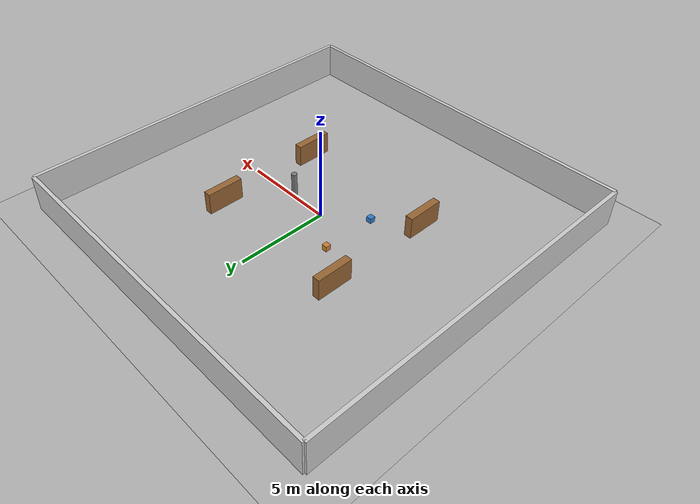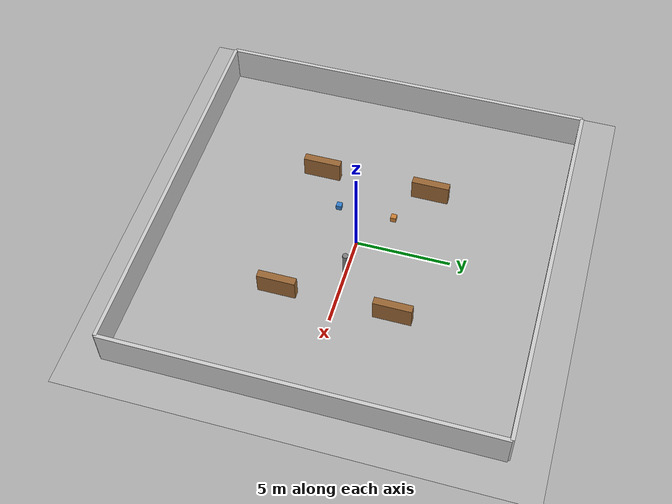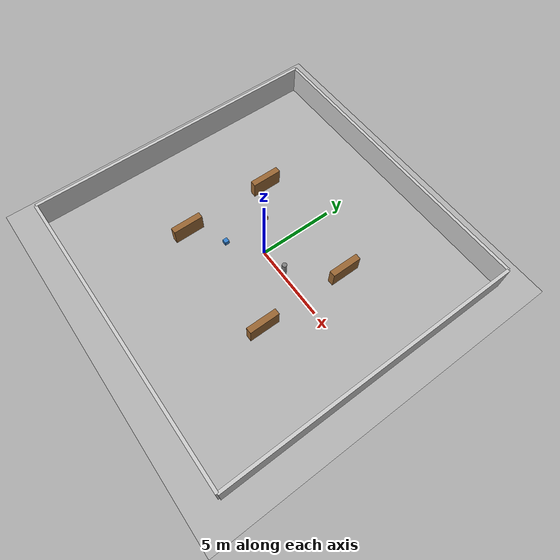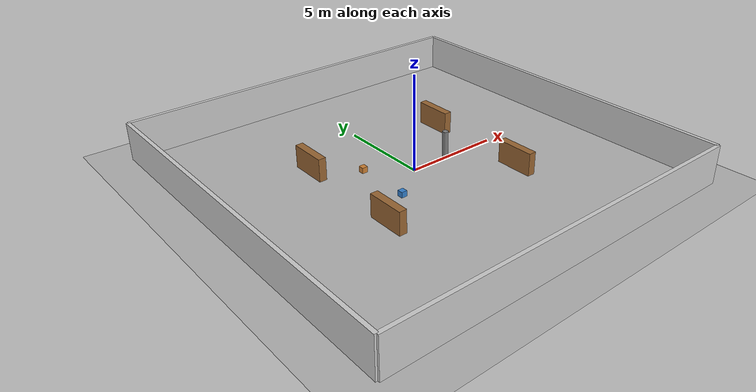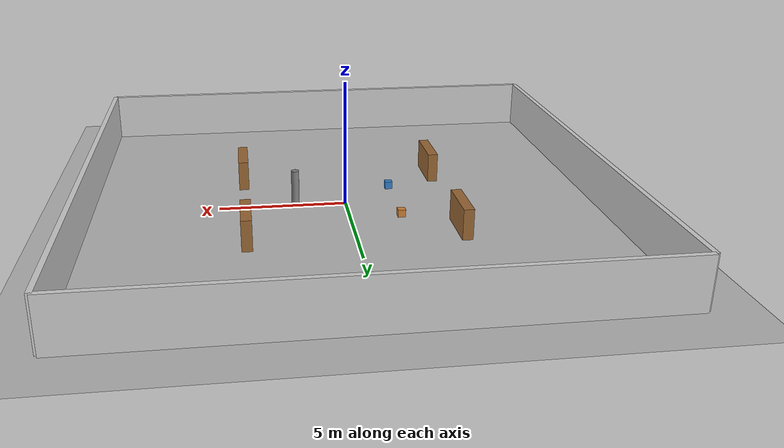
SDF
<?xml version="1.0"?>
<!--
  warehouse.world  — Gazebo Harmonic SDF v1.9
  A simple indoor warehouse environment with aisles formed by box obstacles.
  Physics: ODE, 1 ms step, real-time factor 1.0
-->
<sdf version="1.9">
  <world name="warehouse">

    <!-- ── Physics (ODE) ──────────────────────────────────────── -->
    <physics name="1ms" type="ode">
      <max_step_size>0.001</max_step_size>
      <real_time_factor>1.0</real_time_factor>
      <real_time_update_rate>1000</real_time_update_rate>
      <ode>
        <solver>
          <type>quick</type>
          <iters>150</iters>
          <precon_iters>0</precon_iters>
          <sor>1.4</sor>
          <use_dynamic_moi_rescaling>1</use_dynamic_moi_rescaling>
        </solver>
        <constraints>
          <cfm>0.00001</cfm>
          <erp>0.2</erp>
          <contact_max_correcting_vel>2000</contact_max_correcting_vel>
          <contact_surface_layer>0.01</contact_surface_layer>
        </constraints>
      </ode>
    </physics>

    <!-- ── Required Gazebo Harmonic system plugins ────────────── -->
    <plugin filename="gz-sim-physics-system"
            name="gz::sim::systems::Physics"/>

    <plugin filename="gz-sim-user-commands-system"
            name="gz::sim::systems::UserCommands"/>

    <plugin filename="gz-sim-scene-broadcaster-system"
            name="gz::sim::systems::SceneBroadcaster"/>

    <!-- Sensors system — required for LiDAR / GPU sensors to function -->
    <plugin filename="gz-sim-sensors-system"
            name="gz::sim::systems::Sensors">
      <render_engine>ogre2</render_engine>
    </plugin>

    <!-- Contact sensor support -->
    <plugin filename="gz-sim-contact-system"
            name="gz::sim::systems::Contact"/>

    <!-- ── Lighting ───────────────────────────────────────────── -->
    <light type="directional" name="sun">
      <cast_shadows>true</cast_shadows>
      <pose>0 0 10 0 0 0</pose>
      <diffuse>0.9 0.9 0.9 1</diffuse>
      <specular>0.3 0.3 0.3 1</specular>
      <direction>-0.5 0.2 -0.9</direction>
      <attenuation>
        <range>1000</range>
        <constant>0.9</constant>
        <linear>0.01</linear>
        <quadratic>0.001</quadratic>
      </attenuation>
    </light>

    <!-- Ambient fill light -->
    <light type="directional" name="ambient_fill">
      <cast_shadows>false</cast_shadows>
      <pose>0 0 8 0 0 0</pose>
      <diffuse>0.4 0.4 0.4 1</diffuse>
      <specular>0.0 0.0 0.0 1</specular>
      <direction>0.5 -0.2 -0.9</direction>
    </light>

    <!-- ── Ground plane ───────────────────────────────────────── -->
    <model name="ground_plane">
      <static>true</static>
      <link name="link">
        <collision name="collision">
          <geometry>
            <plane>
              <normal>0 0 1</normal>
              <size>50 50</size>
            </plane>
          </geometry>
          <surface>
            <friction>
              <ode>
                <mu>0.6</mu>
                <mu2>0.6</mu2>
              </ode>
            </friction>
          </surface>
        </collision>
        <visual name="visual">
          <geometry>
            <plane>
              <normal>0 0 1</normal>
              <size>50 50</size>
            </plane>
          </geometry>
          <material>
            <ambient>0.7 0.7 0.7 1</ambient>
            <diffuse>0.7 0.7 0.7 1</diffuse>
            <specular>0.1 0.1 0.1 1</specular>
          </material>
        </visual>
      </link>
    </model>

    <!-- ── Warehouse outer walls ──────────────────────────────── -->
    <!-- North wall -->
    <model name="wall_north">
      <static>true</static>
      <pose>0 10 1.0 0 0 0</pose>
      <link name="link">
        <collision name="collision">
          <geometry><box><size>20 0.2 2.0</size></box></geometry>
        </collision>
        <visual name="visual">
          <geometry><box><size>20 0.2 2.0</size></box></geometry>
          <material>
            <ambient>0.8 0.8 0.8 1</ambient>
            <diffuse>0.8 0.8 0.8 1</diffuse>
          </material>
        </visual>
      </link>
    </model>

    <!-- South wall -->
    <model name="wall_south">
      <static>true</static>
      <pose>0 -10 1.0 0 0 0</pose>
      <link name="link">
        <collision name="collision">
          <geometry><box><size>20 0.2 2.0</size></box></geometry>
        </collision>
        <visual name="visual">
          <geometry><box><size>20 0.2 2.0</size></box></geometry>
          <material>
            <ambient>0.8 0.8 0.8 1</ambient>
            <diffuse>0.8 0.8 0.8 1</diffuse>
          </material>
        </visual>
      </link>
    </model>

    <!-- East wall -->
    <model name="wall_east">
      <static>true</static>
      <pose>10 0 1.0 0 0 0</pose>
      <link name="link">
        <collision name="collision">
          <geometry><box><size>0.2 20 2.0</size></box></geometry>
        </collision>
        <visual name="visual">
          <geometry><box><size>0.2 20 2.0</size></box></geometry>
          <material>
            <ambient>0.8 0.8 0.8 1</ambient>
            <diffuse>0.8 0.8 0.8 1</diffuse>
          </material>
        </visual>
      </link>
    </model>

    <!-- West wall -->
    <model name="wall_west">
      <static>true</static>
      <pose>-10 0 1.0 0 0 0</pose>
      <link name="link">
        <collision name="collision">
          <geometry><box><size>0.2 20 2.0</size></box></geometry>
        </collision>
        <visual name="visual">
          <geometry><box><size>0.2 20 2.0</size></box></geometry>
          <material>
            <ambient>0.8 0.8 0.8 1</ambient>
            <diffuse>0.8 0.8 0.8 1</diffuse>
          </material>
        </visual>
      </link>
    </model>

    <!-- ── Shelf / aisle obstacles ────────────────────────────── -->
    <!--  Two rows of shelf units forming an aisle for the robot   -->

    <!-- Shelf row A (left side) -->
    <model name="shelf_A1">
      <static>true</static>
      <pose>-4.0 3.0 0.6 0 0 0</pose>
      <link name="link">
        <collision name="collision">
          <geometry><box><size>0.4 2.0 1.2</size></box></geometry>
        </collision>
        <visual name="visual">
          <geometry><box><size>0.4 2.0 1.2</size></box></geometry>
          <material>
            <ambient>0.6 0.4 0.2 1</ambient>
            <diffuse>0.6 0.4 0.2 1</diffuse>
          </material>
        </visual>
      </link>
    </model>

    <model name="shelf_A2">
      <static>true</static>
      <pose>-4.0 -3.0 0.6 0 0 0</pose>
      <link name="link">
        <collision name="collision">
          <geometry><box><size>0.4 2.0 1.2</size></box></geometry>
        </collision>
        <visual name="visual">
          <geometry><box><size>0.4 2.0 1.2</size></box></geometry>
          <material>
            <ambient>0.6 0.4 0.2 1</ambient>
            <diffuse>0.6 0.4 0.2 1</diffuse>
          </material>
        </visual>
      </link>
    </model>

    <!-- Shelf row B (right side) -->
    <model name="shelf_B1">
      <static>true</static>
      <pose>4.0 3.0 0.6 0 0 0</pose>
      <link name="link">
        <collision name="collision">
          <geometry><box><size>0.4 2.0 1.2</size></box></geometry>
        </collision>
        <visual name="visual">
          <geometry><box><size>0.4 2.0 1.2</size></box></geometry>
          <material>
            <ambient>0.6 0.4 0.2 1</ambient>
            <diffuse>0.6 0.4 0.2 1</diffuse>
          </material>
        </visual>
      </link>
    </model>

    <model name="shelf_B2">
      <static>true</static>
      <pose>4.0 -3.0 0.6 0 0 0</pose>
      <link name="link">
        <collision name="collision">
          <geometry><box><size>0.4 2.0 1.2</size></box></geometry>
        </collision>
        <visual name="visual">
          <geometry><box><size>0.4 2.0 1.2</size></box></geometry>
          <material>
            <ambient>0.6 0.4 0.2 1</ambient>
            <diffuse>0.6 0.4 0.2 1</diffuse>
          </material>
        </visual>
      </link>
    </model>

    <!-- Central pillar obstacle -->
    <model name="pillar_center">
      <static>true</static>
      <pose>2.0 0 0.75 0 0 0</pose>
      <link name="link">
        <collision name="collision">
          <geometry><cylinder><radius>0.15</radius><length>1.5</length></cylinder></geometry>
        </collision>
        <visual name="visual">
          <geometry><cylinder><radius>0.15</radius><length>1.5</length></cylinder></geometry>
          <material>
            <ambient>0.5 0.5 0.5 1</ambient>
            <diffuse>0.5 0.5 0.5 1</diffuse>
          </material>
        </visual>
      </link>
    </model>

    <!-- Small box — loose item on floor -->
    <model name="box_item1">
      <static>true</static>
      <pose>-2.0 -1.5 0.15 0 0 0</pose>
      <link name="link">
        <collision name="collision">
          <geometry><box><size>0.3 0.3 0.3</size></box></geometry>
        </collision>
        <visual name="visual">
          <geometry><box><size>0.3 0.3 0.3</size></box></geometry>
          <material>
            <ambient>0.2 0.5 0.8 1</ambient>
            <diffuse>0.2 0.5 0.8 1</diffuse>
          </material>
        </visual>
      </link>
    </model>

    <model name="box_item2">
      <static>true</static>
      <pose>-2.0 1.5 0.15 0 0 0</pose>
      <link name="link">
        <collision name="collision">
          <geometry><box><size>0.3 0.3 0.3</size></box></geometry>
        </collision>
        <visual name="visual">
          <geometry><box><size>0.3 0.3 0.3</size></box></geometry>
          <material>
            <ambient>0.8 0.5 0.2 1</ambient>
            <diffuse>0.8 0.5 0.2 1</diffuse>
          </material>
        </visual>
      </link>
    </model>

  </world>
</sdf>
